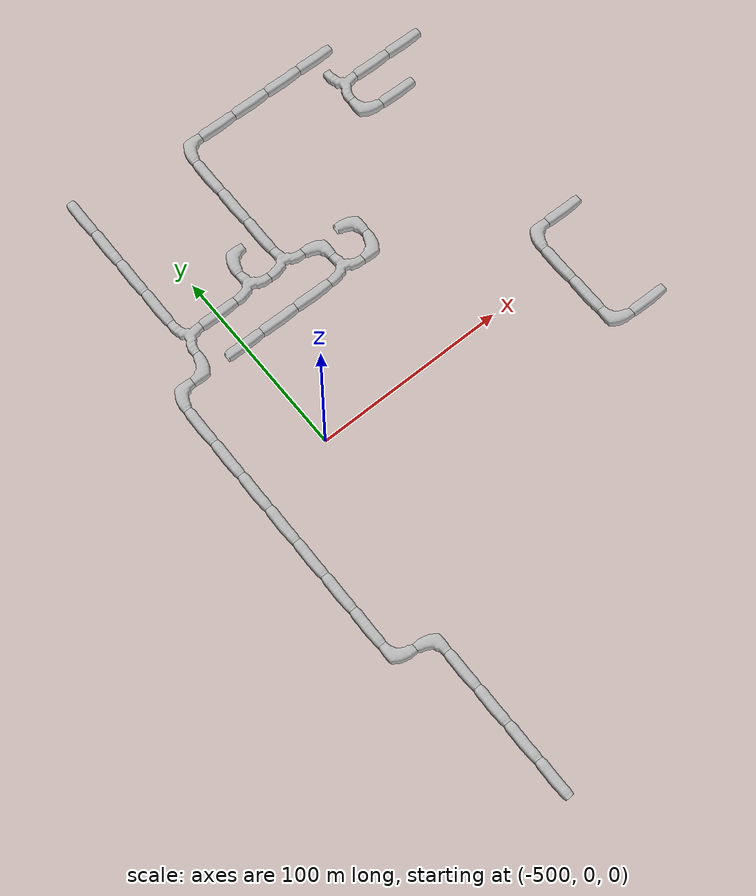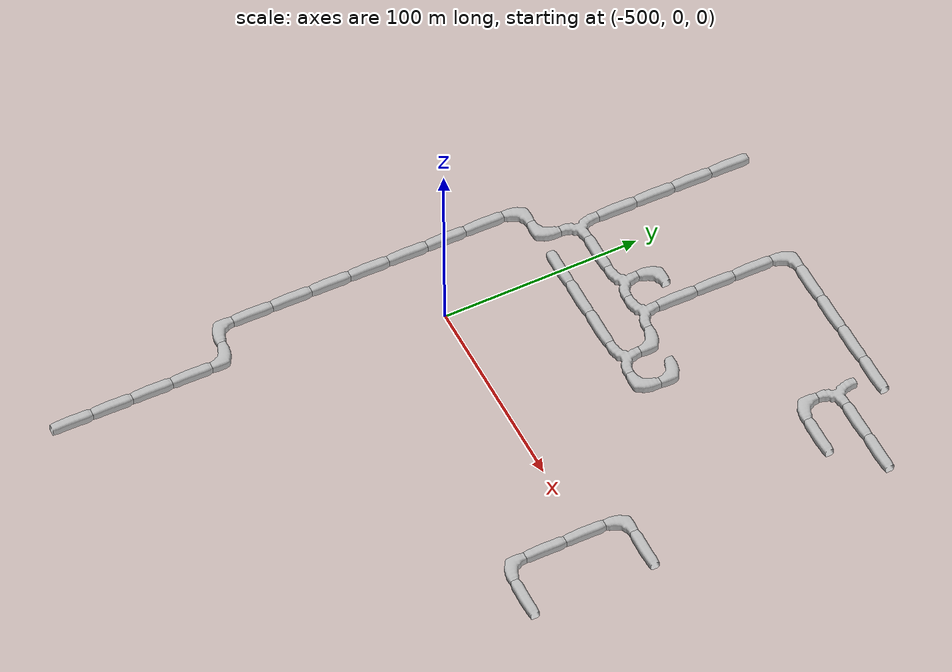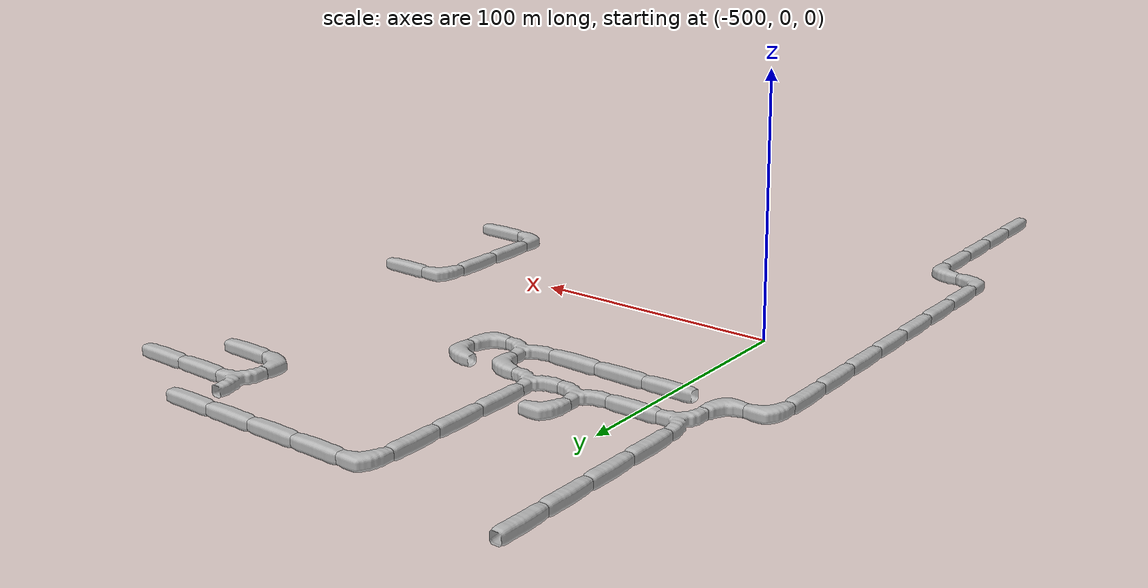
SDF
<sdf version="1.6">
 <world name="cave_8000">
  <include>
   <static>true</static>
   <name>cave_-17_-2</name>
   <pose>-340 -40 0 0 0 1.5707963267948966</pose>
   <uri>model://cave_straight_20m</uri>
  </include>
  <include>
   <static>true</static>
   <name>cave_-18_-2</name>
   <pose>-360 -40 0 0 0 0.0</pose>
   <uri>model://cave_L_20m</uri>
  </include>
  <include>
   <static>true</static>
   <name>cave_-18_-1</name>
   <pose>-360 -20 0 0 0 0.0</pose>
   <uri>model://cave_straight_20m</uri>
  </include>
  <include>
   <static>true</static>
   <name>cave_-18_0</name>
   <pose>-360 0 0 0 0 0.0</pose>
   <uri>model://cave_straight_20m</uri>
  </include>
  <include>
   <static>true</static>
   <name>cave_-18_1</name>
   <pose>-360 20 0 0 0 -1.5707963267948966</pose>
   <uri>model://cave_L_20m</uri>
  </include>
  <include>
   <static>true</static>
   <name>cave_-17_1</name>
   <pose>-340 20 0 0 0 1.5707963267948966</pose>
   <uri>model://cave_straight_20m</uri>
  </include>
  <include>
   <static>true</static>
   <name>cave_-26_8</name>
   <pose>-520 160 0 0 0 0.0</pose>
   <uri>model://cave_straight_20m</uri>
  </include>
  <include>
   <static>true</static>
   <name>cave_-26_7</name>
   <pose>-520 140 0 0 0 0.0</pose>
   <uri>model://cave_straight_20m</uri>
  </include>
  <include>
   <static>true</static>
   <name>cave_-26_6</name>
   <pose>-520 120 0 0 0 0.0</pose>
   <uri>model://cave_straight_20m</uri>
  </include>
  <include>
   <static>true</static>
   <name>cave_-26_5</name>
   <pose>-520 100 0 0 0 0.0</pose>
   <uri>model://cave_straight_20m</uri>
  </include>
  <include>
   <static>true</static>
   <name>cave_-26_4</name>
   <pose>-520 80 0 0 0 -1.5707963267948966</pose>
   <uri>model://cave_3way_20m</uri>
  </include>
  <include>
   <static>true</static>
   <name>cave_-25_4</name>
   <pose>-500 80 0 0 0 1.5707963267948966</pose>
   <uri>model://cave_straight_20m</uri>
  </include>
  <include>
   <static>true</static>
   <name>cave_-24_4</name>
   <pose>-480 80 0 0 0 0.0</pose>
   <uri>model://cave_3way_20m</uri>
  </include>
  <include>
   <static>true</static>
   <name>cave_-23_4</name>
   <pose>-460 80 0 0 0 0.0</pose>
   <uri>model://cave_3way_20m</uri>
  </include>
  <include>
   <static>true</static>
   <name>cave_-22_4</name>
   <pose>-440 80 0 0 0 3.141592653589793</pose>
   <uri>model://cave_L_20m</uri>
  </include>
  <include>
   <static>true</static>
   <name>cave_-22_3</name>
   <pose>-440 60 0 0 0 0.0</pose>
   <uri>model://cave_3way_20m</uri>
  </include>
  <include>
   <static>true</static>
   <name>cave_-21_3</name>
   <pose>-420 60 0 0 0 1.5707963267948966</pose>
   <uri>model://cave_L_20m</uri>
  </include>
  <include>
   <static>true</static>
   <name>cave_-21_4</name>
   <pose>-420 80 0 0 0 3.141592653589793</pose>
   <uri>model://cave_L_20m</uri>
  </include>
  <include>
   <static>true</static>
   <name>cave_-23_3</name>
   <pose>-460 60 0 0 0 1.5707963267948966</pose>
   <uri>model://cave_straight_20m</uri>
  </include>
  <include>
   <static>true</static>
   <name>cave_-24_3</name>
   <pose>-480 60 0 0 0 1.5707963267948966</pose>
   <uri>model://cave_straight_20m</uri>
  </include>
  <include>
   <static>true</static>
   <name>cave_-25_3</name>
   <pose>-500 60 0 0 0 1.5707963267948966</pose>
   <uri>model://cave_straight_20m</uri>
  </include>
  <include>
   <static>true</static>
   <name>cave_-23_5</name>
   <pose>-460 100 0 0 0 0.0</pose>
   <uri>model://cave_straight_20m</uri>
  </include>
  <include>
   <static>true</static>
   <name>cave_-23_6</name>
   <pose>-460 120 0 0 0 0.0</pose>
   <uri>model://cave_straight_20m</uri>
  </include>
  <include>
   <static>true</static>
   <name>cave_-23_7</name>
   <pose>-460 140 0 0 0 0.0</pose>
   <uri>model://cave_straight_20m</uri>
  </include>
  <include>
   <static>true</static>
   <name>cave_-23_8</name>
   <pose>-460 160 0 0 0 -1.5707963267948966</pose>
   <uri>model://cave_L_20m</uri>
  </include>
  <include>
   <static>true</static>
   <name>cave_-22_8</name>
   <pose>-440 160 0 0 0 1.5707963267948966</pose>
   <uri>model://cave_straight_20m</uri>
  </include>
  <include>
   <static>true</static>
   <name>cave_-21_8</name>
   <pose>-420 160 0 0 0 1.5707963267948966</pose>
   <uri>model://cave_straight_20m</uri>
  </include>
  <include>
   <static>true</static>
   <name>cave_-20_8</name>
   <pose>-400 160 0 0 0 1.5707963267948966</pose>
   <uri>model://cave_straight_20m</uri>
  </include>
  <include>
   <static>true</static>
   <name>cave_-19_8</name>
   <pose>-380 160 0 0 0 1.5707963267948966</pose>
   <uri>model://cave_straight_20m</uri>
  </include>
  <include>
   <static>true</static>
   <name>cave_-17_7</name>
   <pose>-340 140 0 0 0 1.5707963267948966</pose>
   <uri>model://cave_straight_20m</uri>
  </include>
  <include>
   <static>true</static>
   <name>cave_-18_7</name>
   <pose>-360 140 0 0 0 1.5707963267948966</pose>
   <uri>model://cave_straight_20m</uri>
  </include>
  <include>
   <static>true</static>
   <name>cave_-19_7</name>
   <pose>-380 140 0 0 0 -1.5707963267948966</pose>
   <uri>model://cave_3way_20m</uri>
  </include>
  <include>
   <static>true</static>
   <name>cave_-19_6</name>
   <pose>-380 120 0 0 0 0.0</pose>
   <uri>model://cave_L_20m</uri>
  </include>
  <include>
   <static>true</static>
   <name>cave_-18_6</name>
   <pose>-360 120 0 0 0 1.5707963267948966</pose>
   <uri>model://cave_straight_20m</uri>
  </include>
  <include>
   <static>true</static>
   <name>cave_-24_5</name>
   <pose>-480 100 0 0 0 -1.5707963267948966</pose>
   <uri>model://cave_L_20m</uri>
  </include>
  <include>
   <static>true</static>
   <name>cave_-26_3</name>
   <pose>-520 60 0 0 0 1.5707963267948966</pose>
   <uri>model://cave_L_20m</uri>
  </include>
  <include>
   <static>true</static>
   <name>cave_-27_3</name>
   <pose>-540 60 0 0 0 -1.5707963267948966</pose>
   <uri>model://cave_L_20m</uri>
  </include>
  <include>
   <static>true</static>
   <name>cave_-27_2</name>
   <pose>-540 40 0 0 0 0.0</pose>
   <uri>model://cave_straight_20m</uri>
  </include>
  <include>
   <static>true</static>
   <name>cave_-27_1</name>
   <pose>-540 20 0 0 0 0.0</pose>
   <uri>model://cave_straight_20m</uri>
  </include>
  <include>
   <static>true</static>
   <name>cave_-27_0</name>
   <pose>-540 0 0 0 0 0.0</pose>
   <uri>model://cave_straight_20m</uri>
  </include>
  <include>
   <static>true</static>
   <name>cave_-27_-1</name>
   <pose>-540 -20 0 0 0 0.0</pose>
   <uri>model://cave_straight_20m</uri>
  </include>
  <include>
   <static>true</static>
   <name>cave_-27_-2</name>
   <pose>-540 -40 0 0 0 0.0</pose>
   <uri>model://cave_straight_20m</uri>
  </include>
  <include>
   <static>true</static>
   <name>cave_-27_-3</name>
   <pose>-540 -60 0 0 0 0.0</pose>
   <uri>model://cave_straight_20m</uri>
  </include>
  <include>
   <static>true</static>
   <name>cave_-27_-4</name>
   <pose>-540 -80 0 0 0 0.0</pose>
   <uri>model://cave_straight_20m</uri>
  </include>
  <include>
   <static>true</static>
   <name>cave_-27_-5</name>
   <pose>-540 -100 0 0 0 0.0</pose>
   <uri>model://cave_L_20m</uri>
  </include>
  <include>
   <static>true</static>
   <name>cave_-26_-5</name>
   <pose>-520 -100 0 0 0 3.141592653589793</pose>
   <uri>model://cave_L_20m</uri>
  </include>
  <include>
   <static>true</static>
   <name>cave_-26_-6</name>
   <pose>-520 -120 0 0 0 0.0</pose>
   <uri>model://cave_straight_20m</uri>
  </include>
  <include>
   <static>true</static>
   <name>cave_-26_-7</name>
   <pose>-520 -140 0 0 0 0.0</pose>
   <uri>model://cave_straight_20m</uri>
  </include>
  <include>
   <static>true</static>
   <name>cave_-26_-8</name>
   <pose>-520 -160 0 0 0 0.0</pose>
   <uri>model://cave_straight_20m</uri>
  </include>
  <include>
   <static>true</static>
   <name>cave_-26_-9</name>
   <pose>-520 -180 0 0 0 0.0</pose>
   <uri>model://cave_straight_20m</uri>
  </include>
 </world>
</sdf>
